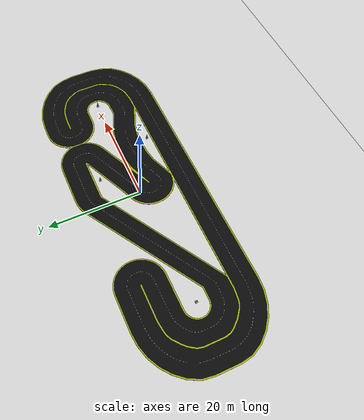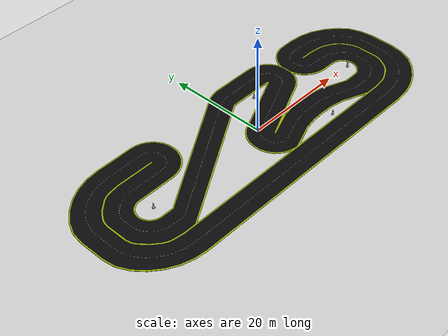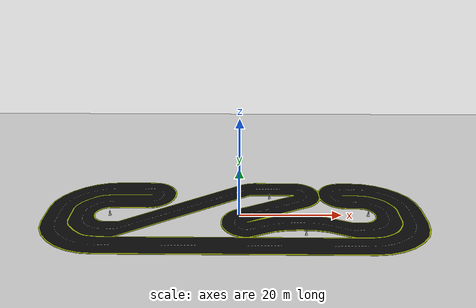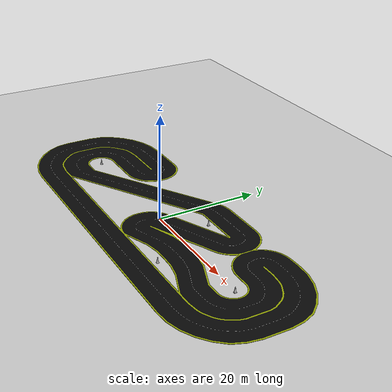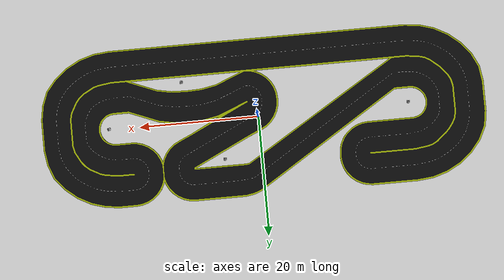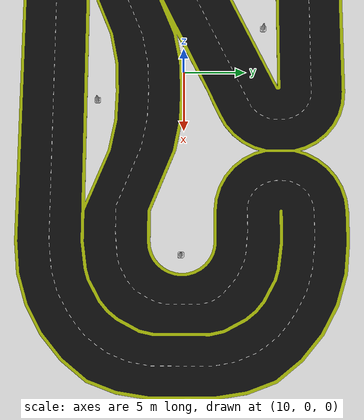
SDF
<sdf version="1.6">
 <world name="default">
  <scene>
   <sky><clouds><speed>12</speed></clouds></sky>
   <ambient>1.0 1.0 1.0 1.0</ambient>
   <shadows>false</shadows>
  </scene>
  <include><uri>model://ground_plane</uri></include>
  <include><uri>model://sun</uri></include>
  <include><name>robocar_race</name><uri>model://urdf/models/robocar_race</uri></include>
  <include>
   <static>true</static>
   <name>cone_1</name>
   <uri>model://construction_cone</uri>
   <pose>25.2 -0.2 0 0 0 0</pose>
  </include>
  <include>
   <static>true</static>
   <name>cone_2</name>
   <uri>model://construction_cone</uri>
   <pose>6.18 6.54 0 0 0 0</pose>
  </include>
  <include>
   <static>true</static>
   <name>cone_3</name>
   <uri>model://construction_cone</uri>
   <pose>-25.4 -0.3 0 0 0 0</pose>
  </include>
  <include>
   <static>true</static>
   <name>cone_4</name>
   <uri>model://construction_cone</uri>
   <pose>12.4 -7.0 0 0 0 0</pose>
  </include>
 </world>
</sdf>

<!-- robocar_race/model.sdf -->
<sdf version="1.6">
  <model name="robocar">
    <static>true</static>

    <link name="link">
      <collision name="collision">
        <geometry>
          <mesh>
            <uri>model://autocone_description/urdf/models/robocar_race/robocar.dae</uri>
          </mesh>
        </geometry>
        <surface>
            <contact>
              <collide_without_contact>true</collide_without_contact>
            </contact>
          </surface>

      </collision>

      <visual name="visual">
        <cast_shadows>true</cast_shadows>
        <geometry>
          <mesh>
            <uri>model://autocone_description/urdf/models/robocar_race/robocar.dae</uri>
          </mesh>
        </geometry>
      </visual>
    </link>
  </model>
</sdf>

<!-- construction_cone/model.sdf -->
<sdf version="1.5">
  <model name="Construction Cone">
    <link name="link">
      <collision name="collision">
        <geometry>
          <mesh>
            <scale>10 10 10</scale>
            <uri>file://isr-testbed/construction_cone/meshes/construction_cone.dae</uri>
          </mesh>
        </geometry>
      </collision>
      <visual name="visual">
        <geometry>
          <mesh>
            <scale>10 10 10</scale>
            <uri>file://isr-testbed/construction_cone/meshes/construction_cone.dae</uri>
          </mesh>
        </geometry>
      </visual>
    </link>
  </model>
</sdf>
